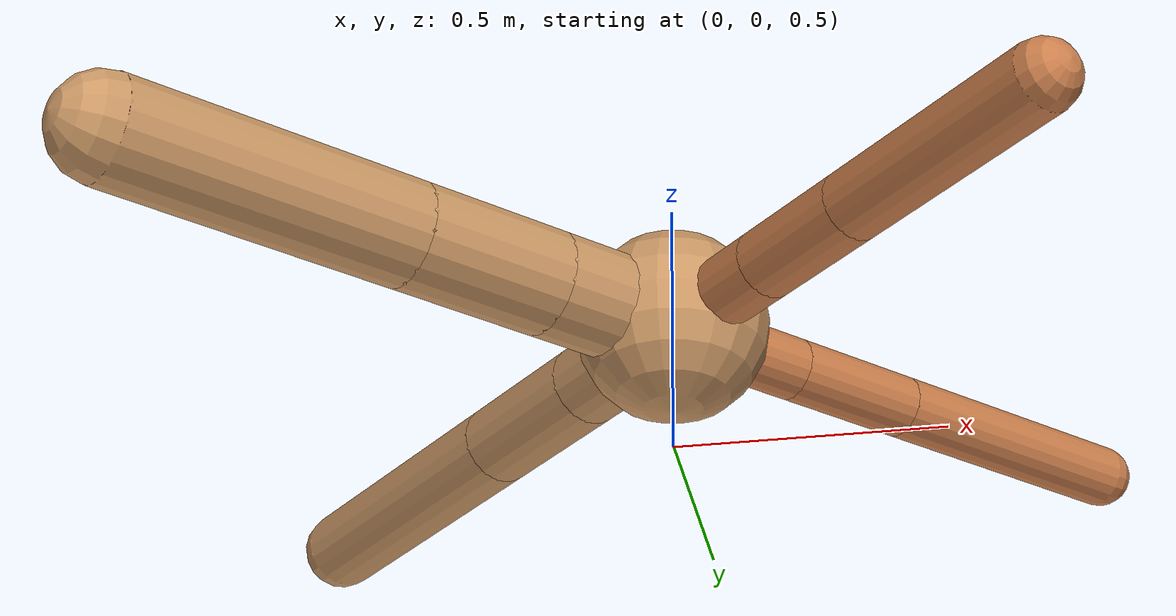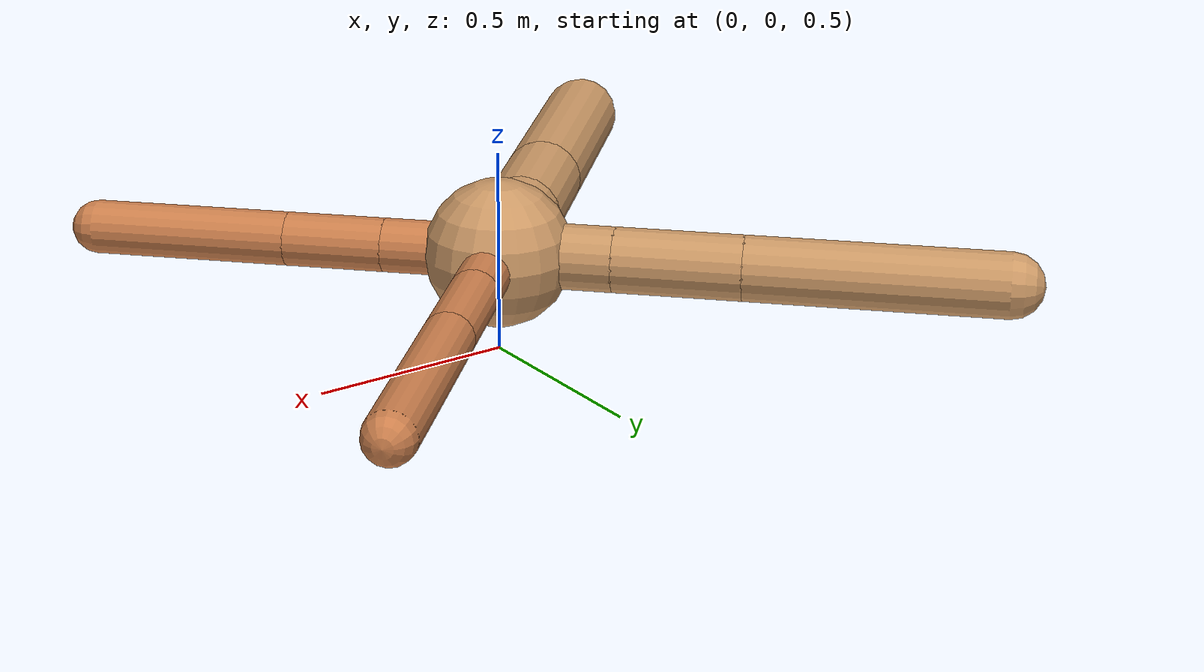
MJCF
<?xml version="1.0" ?>
<mujoco model="ant">

	<compiler angle="degree" coordinate="local" inertiafromgeom="true"/>

	<option integrator="RK4" timestep="0.01"/>

	<custom>

		<numeric data="0.0 0.0 0.55 1.0 0.0 0.0 0.0 0.0 1.0 0.0 -1.0 0.0 -1.0 0.0 1.0" name="init_qpos"/>

	</custom>

	<default>

		<joint armature="1" damping="1" limited="true"/>

		<geom conaffinity="0" condim="3" density="5.0" friction="1.5 0.1 0.1" margin="0.01" rgba="0.8 0.6 0.4 1"/>

	</default>

	<worldbody>

		<body name="torso" pos="0 0 0.75">

			<geom name="torso_geom" pos="0 0 0" size="0.18191022242123994" type="sphere"/>

			<!--joint armature="0" damping="0" limited="false" margin="0.01" name="root" pos="0 0 0" type="free"/-->

			<body name="front_left_leg" pos="0 0 0">

				<geom fromto="0 0 0 0.2 0.2 0" name="aux_1_geom" size="0.06116115492705575" type="capsule" rgba=".8 .5 .3 1"/>

				<body name="aux_1" pos="0.2 0.2 0">

					<joint axis="0 0 1" name="hip_1" pos="0.0 0.0 0.0" range="-40 40" type="hinge"/>

					<geom fromto="0 0 0 0.18892544968455957 0.18892544968455957 0" name="left_leg_geom" size="0.06116115492705575" type="capsule" rgba=".8 .5 .3 1"/>

					<body pos="0.18892544968455957 0.18892544968455957 0" name="front_left_foot">

						<joint axis="-1 1 0" name="ankle_1" pos="0.0 0.0 0.0" range="30 100" type="hinge"/>

						<geom fromto="0 0 0 0.37785089936911914 0.37785089936911914 0" name="left_ankle_geom" size="0.06116115492705575" type="capsule" rgba=".8 .5 .3 1"/>

					</body>

				</body>

			</body>

			<body name="front_right_leg" pos="0 0 0">

				<geom fromto="0 0 0 -0.2 0.2 0" name="aux_2_geom" size="0.07998415663008064" type="capsule"/>

				<body name="aux_2" pos="-0.2 0.2 0">

					<joint axis="0 0 1" name="hip_2" pos="0.0 0.0 0.0" range="-40 40" type="hinge"/>

					<geom fromto="0 0 0 -0.22076655383940613 0.22076655383940613 0" name="right_leg_geom" size="0.07998415663008064" type="capsule"/>

					<body pos="-0.22076655383940613 0.22076655383940613 0" name="front_right_foot">

						<joint axis="1 1 0" name="ankle_2" pos="0.0 0.0 0.0" range="-100 -30" type="hinge"/>

						<geom fromto="0 0 0 -0.44153310767881226 0.44153310767881226 0" name="right_ankle_geom" size="0.07998415663008064" type="capsule"/>

					</body>

				</body>

			</body>

			<body name="left_back_leg" pos="0 0 0">

				<geom fromto="0 0 0 -0.2 -0.2 0" name="aux_3_geom" size="0.10099526589955851" type="capsule"/>

				<body name="aux_3" pos="-0.2 -0.2 0">

					<joint axis="0 0 1" name="hip_3" pos="0.0 0.0 0.0" range="-40 40" type="hinge"/>

					<geom fromto="0 0 0 -0.2077952250983052 -0.2077952250983052 0" name="back_leg_geom" size="0.10099526589955851" type="capsule"/>

					<body pos="-0.2077952250983052 -0.2077952250983052 0" name="left_back_foot">

						<joint axis="-1 1 0" name="ankle_3" pos="0.0 0.0 0.0" range="-100 -30" type="hinge"/>

						<geom fromto="0 0 0 -0.4155904501966104 -0.4155904501966104 0" name="third_ankle_geom" size="0.10099526589955851" type="capsule"/>

					</body>

				</body>

			</body>

			<body name="right_back_leg" pos="0 0 0">

				<geom fromto="0 0 0 0.2 -0.2 0" name="aux_4_geom" size="0.06634329171960252" type="capsule" rgba=".8 .5 .3 1"/>

				<body name="aux_4" pos="0.2 -0.2 0">

					<joint axis="0 0 1" name="hip_4" pos="0.0 0.0 0.0" range="-40 40" type="hinge"/>

					<geom fromto="0 0 0 0.17268161397781978 -0.17268161397781978 0" name="rightback_leg_geom" size="0.06634329171960252" type="capsule" rgba=".8 .5 .3 1"/>

					<body pos="0.17268161397781978 -0.17268161397781978 0" name="right_back_foot">

						<joint axis="1 1 0" name="ankle_4" pos="0.0 0.0 0.0" range="30 100" type="hinge"/>

						<geom fromto="0 0 0 0.34536322795563956 -0.34536322795563956 0" name="fourth_ankle_geom" size="0.06634329171960252" type="capsule" rgba=".8 .5 .3 1"/>

					</body>

				</body>

			</body>

		</body>

	</worldbody>

	<actuator>

		<motor ctrllimited="true" ctrlrange="-1.0 1.0" joint="hip_4" gear="150"/>

		<motor ctrllimited="true" ctrlrange="-1.0 1.0" joint="ankle_4" gear="150"/>

		<motor ctrllimited="true" ctrlrange="-1.0 1.0" joint="hip_1" gear="150"/>

		<motor ctrllimited="true" ctrlrange="-1.0 1.0" joint="ankle_1" gear="150"/>

		<motor ctrllimited="true" ctrlrange="-1.0 1.0" joint="hip_2" gear="150"/>

		<motor ctrllimited="true" ctrlrange="-1.0 1.0" joint="ankle_2" gear="150"/>

		<motor ctrllimited="true" ctrlrange="-1.0 1.0" joint="hip_3" gear="150"/>

		<motor ctrllimited="true" ctrlrange="-1.0 1.0" joint="ankle_3" gear="150"/>

	</actuator>

</mujoco>
